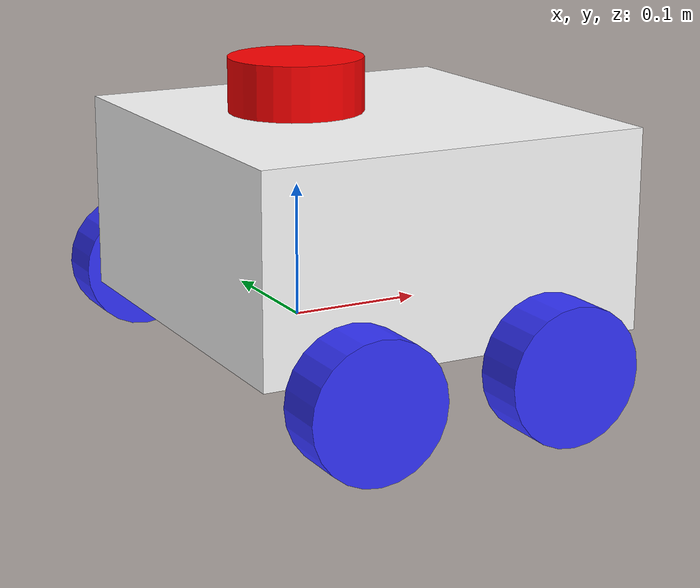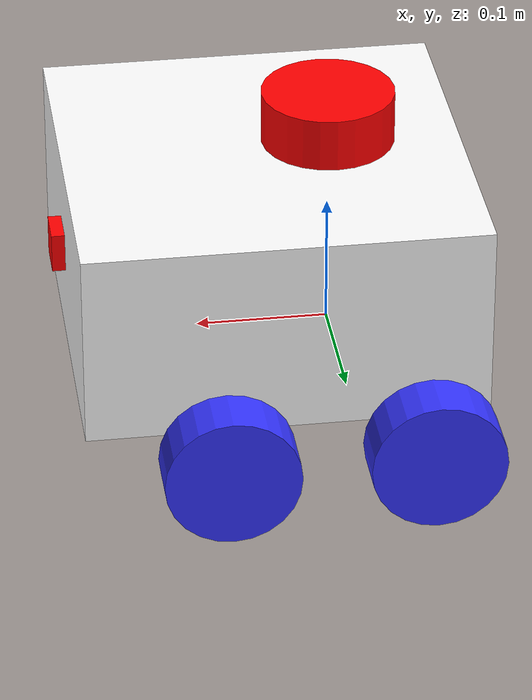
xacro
<?xml version="1.0"?>
<robot xmlns:xacro="http://www.ros.org/wiki/xacro"  name="robot">

    <xacro:arg name="use_ros2_control" default="true"/>

    <xacro:include filename ="robot_core.xacro"/>
    <xacro:if value="$(arg use_ros2_control)">
        <xacro:include filename="ros2_control.xacro" />
    </xacro:if>
    <xacro:unless value="$(arg use_ros2_control)">
        <xacro:include filename="gazebo_control.xacro" />
    </xacro:unless>
    <xacro:include filename ="lidar.xacro"/>
    <xacro:include filename ="camera.xacro"/>

</robot>

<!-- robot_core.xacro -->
<robot xmlns:xacro="http://www.ros.org/wiki/xacro" >

    <xacro:include filename="inertial_macros.xacro" />

    <!-- Colour Parameters -->
    <material name="white">
        <color rgba="1 1 1 1"/>
    </material>

    <material name="orange">
        <color rgba="1 0.3 0.1 1"/>
    </material>

    <material name="red">
        <color rgba="1 0 0 1"/>
    </material>

    <material name="blue">
        <color rgba="0.2 0.2 1 1"/>
    </material>

    <material name="black">
        <color rgba="0 0 0 1"/>
    </material>

    <!-- Base Link -->
    <link name="base_link">

    </link>

    <!-- Chassis Joint -->
    <joint name="chassis_joint" type="fixed">
        <parent link="base_link"/>
        <child link="chassis"/>
        <origin xyz="-0.1 0 0"/>
    </joint>

    <!-- Chassis Link -->

    <link name="chassis">
        <visual>
            <origin xyz="0.15 0 0.075" rpy="0 0 0"/>
            <geometry>
                <box size="0.3 0.3 0.15"/>
            </geometry>
            <material name="white"/>
        </visual>
        <collision>
            <origin xyz="0.15 0 0.075" rpy="0 0 0"/>
            <geometry>
                <box size="0.3 0.3 0.15"/>
            </geometry>
            <material name="white"/>
        </collision>
        <xacro:inertial_box mass="0.5" x="0.3" y="0.3" z="0.15">
            <origin xyz="0.15 0 0.075" rpy="0 0 0"/>
        </xacro:inertial_box>
    </link>

    <gazebo reference="chassis">
        <material>Gazebo/White</material>
    </gazebo>

    <!-- Front Left Wheel-->
    <joint name="front_left_wheel_joint" type="continuous">
        <parent link="base_link"/>
        <child link="front_left_wheel"/>
        <origin xyz="0.1 0.2 0" rpy="-${pi/2} 0 0"/>
        <axis xyz="0 0 1"/>
    </joint>

    <link name="front_left_wheel">
        <visual>
            <geometry>
                <cylinder length="0.04" radius="0.05" />
            </geometry>
            <material name="blue"/>
        </visual>
        <collision>
            <geometry>
                <cylinder length="0.04" radius="0.05" />
            </geometry>
            <material name="blue"/>
        </collision>
        <xacro:inertial_cylinder mass="0.1" length="0.05" radius="0.05">
            <origin xyz="0 0 0" rpy="0 0 0"/>
        </xacro:inertial_cylinder>
    </link>

    <gazebo reference="front_left_wheel">
        <material>Gazebo/Blue</material>
    </gazebo>

    <!-- Back Left Wheel -->
    <joint name="back_left_wheel_joint" type="continuous">
        <parent link="base_link"/>
        <child link="back_left_wheel"/>
        <origin xyz="-0.05 0.2 0" rpy="-${pi/2} 0 0"/>
        <axis xyz="0 0 1"/>
    </joint>

    <link name="back_left_wheel">
        <visual>
            <geometry>
                <cylinder length="0.04" radius="0.05" />
            </geometry>
            <material name="blue"/>
        </visual>
        <collision>
            <geometry>
                <cylinder length="0.04" radius="0.05" />
            </geometry>
            <material name="blue"/>
        </collision>
        <xacro:inertial_cylinder mass="0.1" length="0.05" radius="0.05">
            <origin xyz="0 0 0" rpy="0 0 0"/>
        </xacro:inertial_cylinder>
    </link>

    <gazebo reference="back_left_wheel">
        <material>Gazebo/Blue</material>
    </gazebo>

    <!-- Back Right Wheel-->
    <joint name="back_right_wheel_joint" type="continuous">
        <parent link="base_link"/>
        <child link="back_right_wheel"/>
        <origin xyz="-0.05 -0.2 0" rpy="${pi/2} 0 0"/>
        <axis xyz="0 0 -1"/>
    </joint>

    <link name="back_right_wheel">
        <visual>
            <geometry>
                <cylinder length="0.04" radius="0.05" />
            </geometry>
            <material name="blue"/>
        </visual>
        <collision>
            <geometry>
                <cylinder length="0.04" radius="0.05" />
            </geometry>
            <material name="blue"/>
        </collision>
        <xacro:inertial_cylinder mass="0.1" length="0.05" radius="0.05">
            <origin xyz="0 0 0" rpy="0 0 0"/>
        </xacro:inertial_cylinder>
    </link>

    <gazebo reference="back_right_wheel">
        <material>Gazebo/Blue</material>
    </gazebo>

    <!-- Front Right Wheel-->
    <joint name="front_right_wheel_joint" type="continuous">
        <parent link="base_link"/>
        <child link="front_right_wheel"/>
        <origin xyz="0.1 -0.2 0" rpy="${pi/2} 0 0"/>
        <axis xyz="0 0 -1"/>
    </joint>

    <link name="front_right_wheel">
        <visual>
            <geometry>
                <cylinder length="0.04" radius="0.05" />
            </geometry>
            <material name="blue"/>
        </visual>
        <collision>
            <geometry>
                <cylinder length="0.04" radius="0.05" />
            </geometry>
            <material name="blue"/>
        </collision>
        <xacro:inertial_cylinder mass="0.1" length="0.05" radius="0.05">
            <origin xyz="0 0 0" rpy="0 0 0"/>
        </xacro:inertial_cylinder>
    </link>

    <gazebo reference="front_right_wheel">
        <material>Gazebo/Blue</material>
    </gazebo>

</robot>

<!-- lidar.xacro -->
<robot xmlns:xacro="http://www.ros.org/wiki/xacro" >

    <joint name="laser_joint" type="fixed">
        <parent link="chassis"/>
        <child link="laser_frame"/>
        <origin xyz="0.1 0 0.175" rpy="0 0 0"/>
    </joint>

    <link name="laser_frame">
        <visual>
            <geometry>
                <cylinder radius="0.05" length="0.04"/>
            </geometry>
            <material name="red"/>
        </visual>
        <collision>
            <geometry>
                <cylinder radius="0.05" length="0.04"/>
            </geometry>
        </collision>
        <xacro:inertial_cylinder mass="0.1" length="0.04" radius="0.05">
            <origin xyz="0 0 0" rpy="0 0 0"/>
        </xacro:inertial_cylinder>
    </link>

    <gazebo reference="laser_frame">
        <material>Gazebo/Red</material>

        <sensor name="laser" type="ray">
            <pose> 0 0 0 0 0 0 </pose>
            <visualize>true</visualize>
            <update_rate>10</update_rate>
            <ray>
                <scan>
                    <horizontal>
                        <samples>360</samples>
                        <min_angle>-3.14</min_angle>
                        <max_angle>3.14</max_angle>
                    </horizontal>
                </scan>
                <range>
                    <min>0.3</min>
                    <max>12</max>
                </range>
            </ray>
            <plugin name="laser_controller" filename="libgazebo_ros_ray_sensor.so">
                <ros>
                    <argument>~/out:=scan</argument>
                </ros>
                <output_type>sensor_msgs/LaserScan</output_type>
                <frame_name>laser_frame</frame_name>
            </plugin>
        </sensor>
    </gazebo>

</robot>

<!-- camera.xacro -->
<robot xmlns:xacro="http://www.ros.org/wiki/xacro" >

    <joint name="camera_joint" type="fixed">
        <parent link="chassis"/>
        <child link="camera_link"/>
        <origin xyz="0.305 0 0.08" rpy="0 0 0"/>
    </joint>

    <link name="camera_link">
        <visual>
            <geometry>
                <box size="0.010 0.03 0.03"/>
            </geometry>
            <material name="red"/>
        </visual>
    </link>

    <joint name="camera_optical_joint" type="fixed">
        <parent link="camera_link"/>
        <child link="camera_link_optical"/>
        <origin xyz="0 0 0" rpy="${-pi/2} 0 ${-pi/2}"/>
    </joint>

    <link name="camera_link_optical"></link>

    <gazebo reference="camera_link">

        <material>Gazebo/Red</material>

        <sensor name="camera" type="camera">
            <pose> 0 0 0 0 0 0 </pose>
            <visualize>true</visualize>
            <update_rate>10</update_rate>
            <camera>
                <horizontal_fov>1.089</horizontal_fov>
                <image>
                    <format>R8G8B8</format>
                    <width>640</width>
                    <height>480</height>
                </image>
                <clip>
                    <near>0.05</near>
                    <far>8.0</far>
                </clip>
            </camera>
            <plugin name="camera_controller" filename="libgazebo_ros_camera.so">
                <frame_name>camera_link_optical</frame_name>
            </plugin>
        </sensor>
    </gazebo>

</robot>
